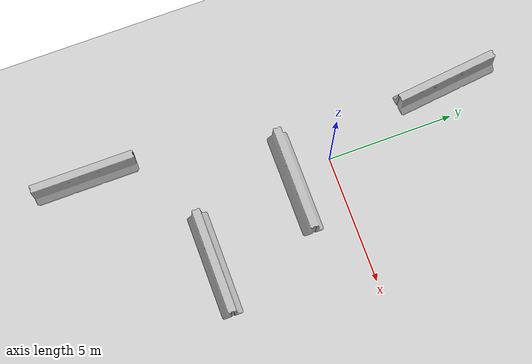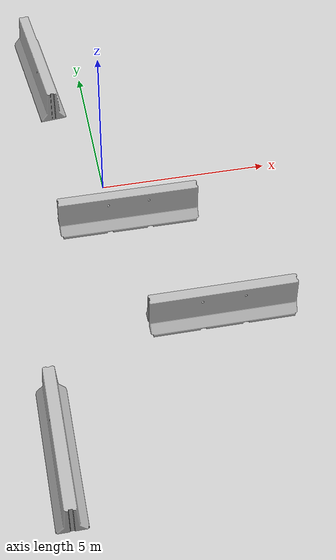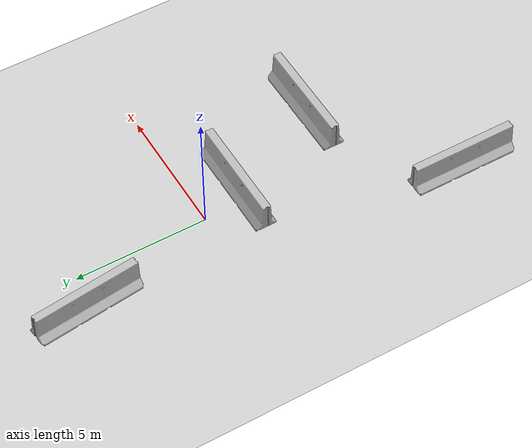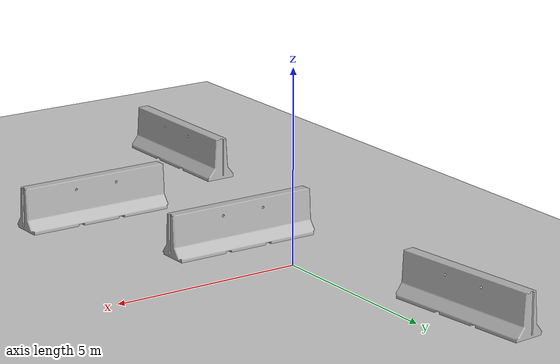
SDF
<sdf version="1.7">
 <world name="default">
  <light name="sun" type="directional">
   <pose>0 0 10 0 -0 0</pose>
   <diffuse>0.8 0.8 0.8 1</diffuse>
   <specular>0.2 0.2 0.2 1</specular>
   <attenuation>
    <range>1000</range>
    <constant>0.9</constant>
    <linear>0.01</linear>
    <quadratic>0.001</quadratic>
   </attenuation>
   <direction>0 0.5 -0.9</direction>
   <spot><inner_angle>0</inner_angle><outer_angle>0</outer_angle><falloff>0</falloff></spot>
  </light>
  <model name="ground_plane">
   <static>1</static>
   <link name="link">
    <collision name="collision">
     <geometry><plane><normal>0 0 1</normal><size>100 100</size></plane></geometry>
     <surface><friction><ode><mu>100</mu><mu2>50</mu2></ode></friction></surface>
    </collision>
    <visual name="visual">
     <cast_shadows>0</cast_shadows>
     <geometry><plane><normal>0 0 1</normal><size>100 100</size></plane></geometry>
     <material>
      <script><uri>file://media/materials/scripts/gazebo.material</uri><name>Gazebo/Grey</name></script>
     </material>
    </visual>
   </link>
  </model>
  <model name="obs1">
   <static>1</static>
   <link name="link">
    <visual name="visual">
     <geometry><mesh><uri>model://jersey_barrier/meshes/jersey_barrier.dae</uri></mesh></geometry>
    </visual>
    <collision name="upright">
     <pose>0 0 0.5715 0 -0 0</pose>
     <geometry><box><size>4.06542 0.3063 1.143</size></box></geometry>
    </collision>
    <collision name="base">
     <pose>0 0 0.032258 0 -0 0</pose>
     <geometry><box><size>4.06542 0.8107 0.064516</size></box></geometry>
    </collision>
    <collision name="base2">
     <pose>0 0 0.1 0 -0 0</pose>
     <geometry><box><size>4.06542 0.65 0.1</size></box></geometry>
    </collision>
    <collision name="base3">
     <pose>0 0 0.2 0 -0 0</pose>
     <geometry><box><size>4.06542 0.5 0.1</size></box></geometry>
    </collision>
    <collision name="left-angle">
     <pose>0 -0.224 0.2401 0.9 -0 0</pose>
     <geometry><box><size>4.06542 0.5 0.064516</size></box></geometry>
    </collision>
    <collision name="right-angle">
     <pose>0 0.224 0.2401 -0.9 0 0</pose>
     <geometry><box><size>4.06542 0.5 0.064516</size></box></geometry>
    </collision>
   </link>
   <pose>0.5 -1.6 0.2 0 -0 0</pose>
  </model>
  <model name="obs2">
   <static>1</static>
   <link name="link">
    <visual name="visual">
     <geometry><mesh><uri>model://jersey_barrier/meshes/jersey_barrier.dae</uri></mesh></geometry>
    </visual>
    <collision name="upright">
     <pose>0 0 0.5715 0 -0 0</pose>
     <geometry><box><size>4.06542 0.3063 1.143</size></box></geometry>
    </collision>
    <collision name="base">
     <pose>0 0 0.032258 0 -0 0</pose>
     <geometry><box><size>4.06542 0.8107 0.064516</size></box></geometry>
    </collision>
    <collision name="base2">
     <pose>0 0 0.1 0 -0 0</pose>
     <geometry><box><size>4.06542 0.65 0.1</size></box></geometry>
    </collision>
    <collision name="base3">
     <pose>0 0 0.2 0 -0 0</pose>
     <geometry><box><size>4.06542 0.5 0.1</size></box></geometry>
    </collision>
    <collision name="left-angle">
     <pose>0 -0.224 0.2401 0.9 -0 0</pose>
     <geometry><box><size>4.06542 0.5 0.064516</size></box></geometry>
    </collision>
    <collision name="right-angle">
     <pose>0 0.224 0.2401 -0.9 0 0</pose>
     <geometry><box><size>4.06542 0.5 0.064516</size></box></geometry>
    </collision>
   </link>
   <pose>2.4 -5.5 0.2 0 -0 0</pose>
  </model>
  <model name="obs3">
   <static>1</static>
   <link name="link">
    <visual name="visual">
     <geometry><mesh><uri>model://jersey_barrier/meshes/jersey_barrier.dae</uri></mesh></geometry>
    </visual>
    <collision name="upright">
     <pose>0 0 0.5715 0 -0 0</pose>
     <geometry><box><size>4.06542 0.3063 1.143</size></box></geometry>
    </collision>
    <collision name="base">
     <pose>0 0 0.032258 0 -0 0</pose>
     <geometry><box><size>4.06542 0.8107 0.064516</size></box></geometry>
    </collision>
    <collision name="base2">
     <pose>0 0 0.1 0 -0 0</pose>
     <geometry><box><size>4.06542 0.65 0.1</size></box></geometry>
    </collision>
    <collision name="base3">
     <pose>0 0 0.2 0 -0 0</pose>
     <geometry><box><size>4.06542 0.5 0.1</size></box></geometry>
    </collision>
    <collision name="left-angle">
     <pose>0 -0.224 0.2401 0.9 -0 0</pose>
     <geometry><box><size>4.06542 0.5 0.064516</size></box></geometry>
    </collision>
    <collision name="right-angle">
     <pose>0 0.224 0.2401 -0.9 0 0</pose>
     <geometry><box><size>4.06542 0.5 0.064516</size></box></geometry>
    </collision>
   </link>
   <pose>-2.5 -9 0 0 -0 1.57</pose>
  </model>
  <gravity>0 0 -9.8</gravity>
  <magnetic_field>6e-06 2.3e-05 -4.2e-05</magnetic_field>
  <atmosphere type="adiabatic"/>
  <physics type="ode">
   <max_step_size>0.001</max_step_size>
   <real_time_factor>1</real_time_factor>
   <real_time_update_rate>1000</real_time_update_rate>
  </physics>
  <scene><ambient>0.4 0.4 0.4 1</ambient><background>0.7 0.7 0.7 1</background><shadows>1</shadows></scene>
  <spherical_coordinates>
   <surface_model>EARTH_WGS84</surface_model>
   <latitude_deg>0</latitude_deg>
   <longitude_deg>0</longitude_deg>
   <elevation>0</elevation>
   <heading_deg>0</heading_deg>
  </spherical_coordinates>
  <model name="jersey_barrier">
   <static>1</static>
   <link name="link">
    <visual name="visual">
     <geometry><mesh><uri>model://jersey_barrier/meshes/jersey_barrier.dae</uri></mesh></geometry>
    </visual>
    <collision name="upright">
     <pose>0 0 0.5715 0 -0 0</pose>
     <geometry><box><size>4.06542 0.3063 1.143</size></box></geometry>
    </collision>
    <collision name="base">
     <pose>0 0 0.032258 0 -0 0</pose>
     <geometry><box><size>4.06542 0.8107 0.064516</size></box></geometry>
    </collision>
    <collision name="base2">
     <pose>0 0 0.1 0 -0 0</pose>
     <geometry><box><size>4.06542 0.65 0.1</size></box></geometry>
    </collision>
    <collision name="base3">
     <pose>0 0 0.2 0 -0 0</pose>
     <geometry><box><size>4.06542 0.5 0.1</size></box></geometry>
    </collision>
    <collision name="left-angle">
     <pose>0 -0.224 0.2401 0.9 -0 0</pose>
     <geometry><box><size>4.06542 0.5 0.064516</size></box></geometry>
    </collision>
    <collision name="right-angle">
     <pose>0 0.224 0.2401 -0.9 0 0</pose>
     <geometry><box><size>4.06542 0.5 0.064516</size></box></geometry>
    </collision>
   </link>
   <pose>-1.28587 5.23233 0 0 0 -1.46166</pose>
  </model>
 </world>
</sdf>
